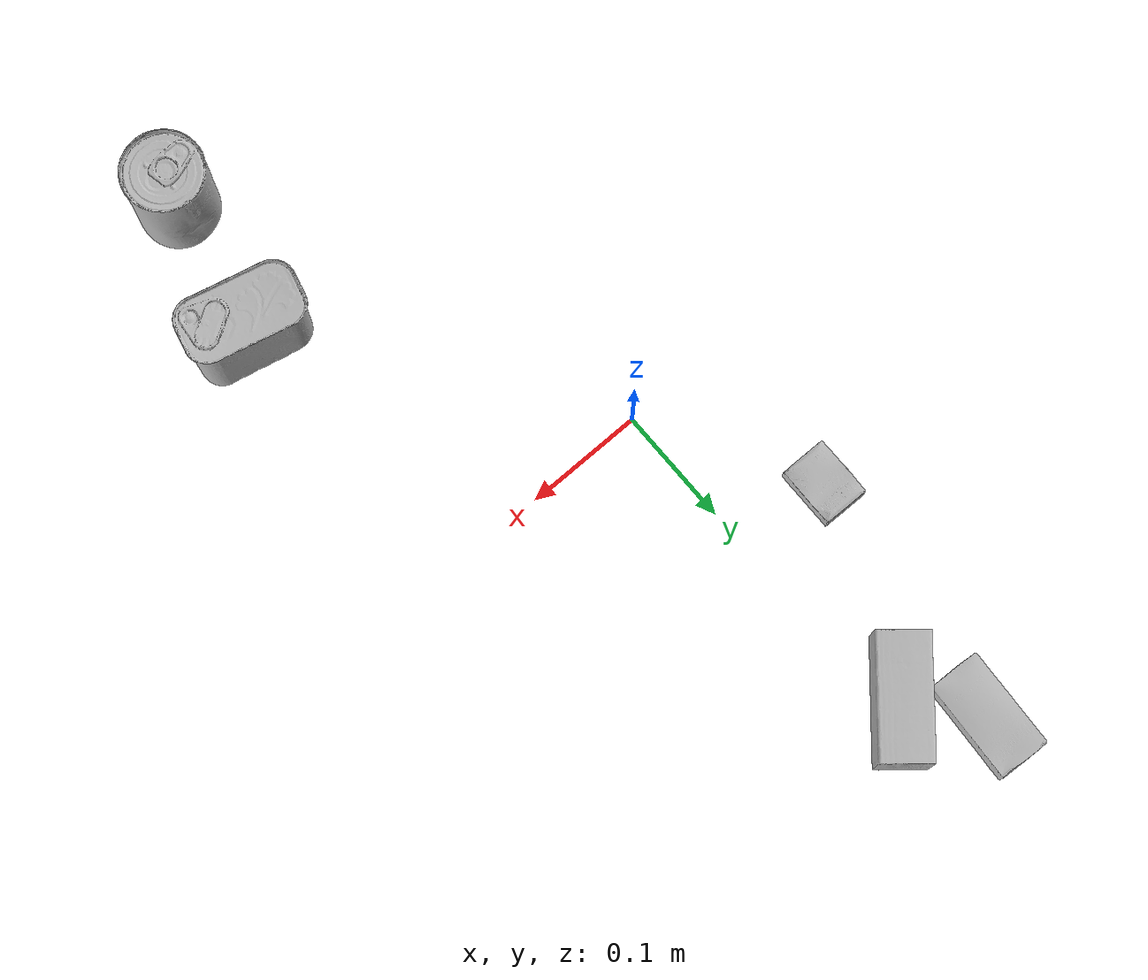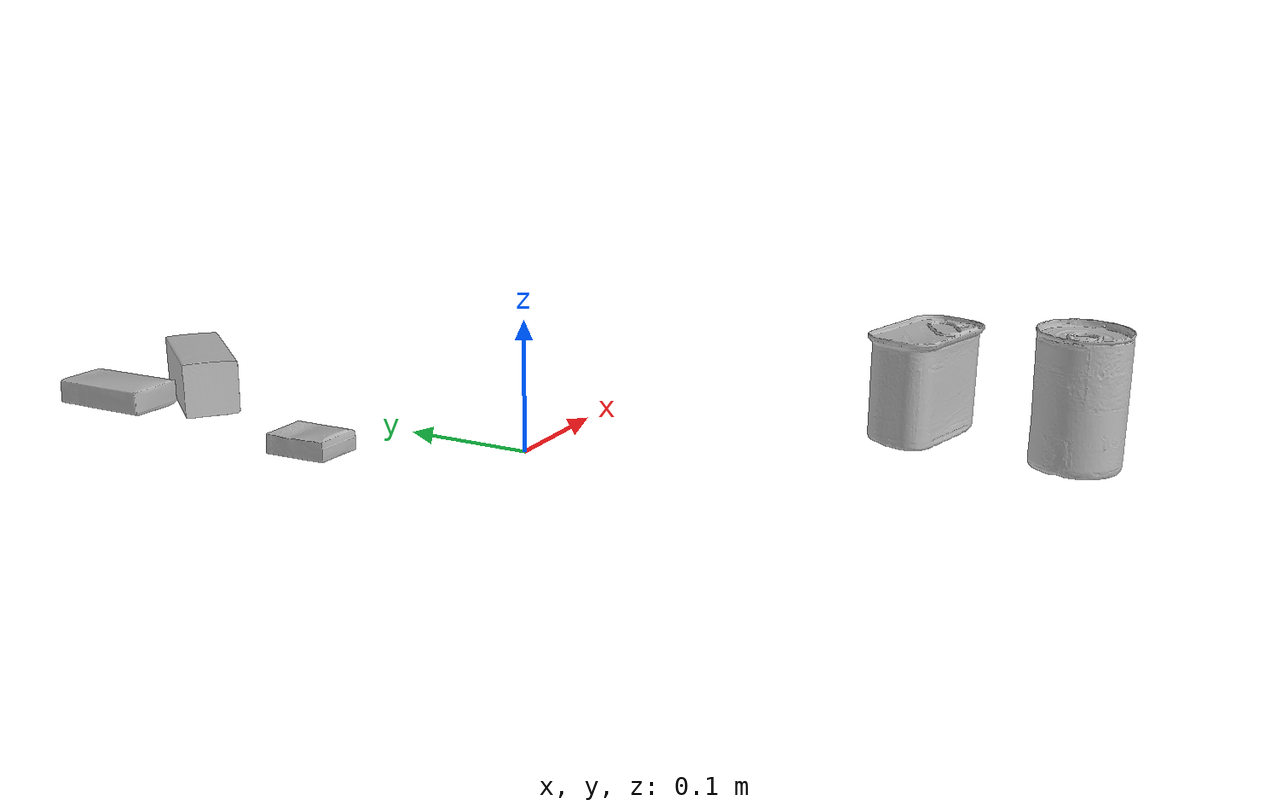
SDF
<sdf version="1.4">
  <world name="default">
    <light name="light1" type="point">
      <pose>0 0 1 0 0 0</pose>
      <diffuse>3 3 3 1</diffuse>
      <specular>3 3 3 1</specular>
    </light>
    <light name="light2" type="point">
      <pose>0 0.5 2 0 0 0</pose>
      <diffuse>1 1 1 1</diffuse>
      <specular>1 1 1 1</specular>
    </light>
    <light name="light3" type="point">
      <pose>0 0.5 2 0 0 0</pose>
      <diffuse>3 3 3 1</diffuse>
      <specular>3 3 3 1</specular>
    </light>
    <scene>
      <ambient>0.7 0.7 0.7</ambient>
    </scene>
    <model name="box1">
      <link name="link_box1">
        <collision name="default">
          <geometry>
            <mesh>
              <uri>model://sugar_box/collision_meshes/collision.obj</uri>
              <scale>0.5 0.5 0.5</scale>
            </mesh>
          </geometry>
          <surface>
            <friction>
              <ode>
                <mu>0.5</mu>
                <mu2>0.5</mu2>
              </ode>
            </friction>
          <contact>
        <ode>
            <max_vel>0</max_vel>
            <min_depth>0.0001</min_depth>
            <kp>1e8</kp>
        </ode>
    </contact></surface>
        </collision>
        <visual name="default">
          <geometry>
            <mesh>
              <uri>model://sugar_box/visual_meshes/visual.dae</uri>
              <scale>0.5 0.5 0.5</scale>
            </mesh>
          </geometry>
        </visual>
        <inertial>
          <mass>0.048160675913095474</mass>
          <pose>0.0005171863595023751 1.924554817378521e-05 -0.00018182402709499002 -0.0004046258638373534 0.0010506635215919557 0.0026153787891515894</pose>
          <inertia>
            <ixx>1.0031835e-05</ixx>
            <iyy>3.2424945e-05</iyy>
            <izz>3.8816543e-05</izz>
            <ixy>0</ixy>
            <ixz>0</ixz>
            <iyz>0</iyz>
          </inertia>
        </inertial>
      </link>
      <pose>-0.05315272510051727 0.35547566413879395 0.011399304494261742 0.000774711124991967 -0.02343311655323694 -1.6252341492941964</pose>
    </model>
    <model name="box2">
      <link name="link_box2">
        <collision name="default">
          <geometry>
            <mesh>
              <uri>model://cracker_box/collision_meshes/collision.obj</uri>
              <scale>0.25 0.25 0.25</scale>
            </mesh>
          </geometry>
          <surface>
            <friction>
              <ode>
                <mu>0.5</mu>
                <mu2>0.5</mu2>
              </ode>
            </friction>
          <contact>
        <ode>
            <max_vel>0</max_vel>
            <min_depth>0.0001</min_depth>
            <kp>1e8</kp>
        </ode>
    </contact></surface>
        </collision>
        <visual name="default">
          <geometry>
            <mesh>
              <uri>model://cracker_box/visual_meshes/visual.dae</uri>
              <scale>0.25 0.25 0.25</scale>
            </mesh>
          </geometry>
        </visual>
        <inertial>
          <mass>0.047952666878700256</mass>
          <pose>0.00023660370789002627 6.358561950037256e-05 -0.0004257383698131889 -0.0003162075404896153 -0.011106488669099107 0.002546795234185617</pose>
          <inertia>
            <ixx>7.623136e-06</ixx>
            <iyy>1.2587296e-05</iyy>
            <izz>1.7963224e-05</izz>
            <ixy>0</ixy>
            <ixz>0</ixz>
            <iyz>0</iyz>
          </inertia>
        </inertial>
      </link>
      <pose>-0.07928051054477692 0.13741034269332886 0.009096024557948112 -0.014050496777707751 -0.005016562626294458 -1.5807982758603287</pose>
    </model>
    <model name="box3">
      <link name="link_box3">
        <collision name="default">
          <geometry>
            <mesh>
              <uri>model://wood_block/collision_meshes/collision.obj</uri>
              <scale>0.5 0.5 0.5</scale>
            </mesh>
          </geometry>
          <surface>
            <friction>
              <ode>
                <mu>0.5</mu>
                <mu2>0.5</mu2>
              </ode>
            </friction>
          <contact>
        <ode>
            <max_vel>0</max_vel>
            <min_depth>0.0001</min_depth>
            <kp>1e8</kp>
        </ode>
    </contact></surface>
        </collision>
        <visual name="default">
          <geometry>
            <mesh>
              <uri>model://wood_block/visual_meshes/visual.dae</uri>
              <scale>0.5 0.5 0.5</scale>
            </mesh>
          </geometry>
        </visual>
        <inertial>
          <mass>0.27162742614746094</mass>
          <pose>-2.9066577553749084e-06 -0.000285404734313488 0.00013204291462898254 -0.05220780121661256 -0.005192696561201931 -0.006861379819720353</pose>
          <inertia>
            <ixx>9.086965e-05</ixx>
            <iyy>0.00028705722</iyy>
            <izz>0.0002859835</izz>
            <ixy>0</ixy>
            <ixz>0</ixz>
            <iyz>0</iyz>
          </inertia>
        </inertial>
      </link>
      <pose>-0.009753658436238766 0.3035565912723541 0.022629259154200554 -0.00520846310149172 0.005718713154177207 0.8706141217258777</pose>
    </model>
    <model name="can1">
      <link name="link_can1">
        <collision name="default">
          <geometry>
            <mesh>
              <uri>model://tomato_soup_can/collision_meshes/collision.obj</uri>
              <scale>1.0 1.0 1.0</scale>
            </mesh>
          </geometry>
          <surface>
            <friction>
              <ode>
                <mu>0.5</mu>
                <mu2>0.5</mu2>
              </ode>
            </friction>
          <contact>
        <ode>
            <max_vel>0</max_vel>
            <min_depth>0.0001</min_depth>
            <kp>1e8</kp>
        </ode>
    </contact></surface>
        </collision>
        <visual name="default">
          <geometry>
            <mesh>
              <uri>model://tomato_soup_can/visual_meshes/visual.dae</uri>
              <scale>1.0 1.0 1.0</scale>
            </mesh>
          </geometry>
        </visual>
        <inertial>
          <mass>0.33680883049964905</mass>
          <pose>0.0001265227037947625 0.0001080552683561109 -0.0017973986687138677 0.007020065933643549 0.0004229964102555597 -0.009903579397299064</pose>
          <inertia>
            <ixx>0.00036928226</ixx>
            <iyy>0.0003671481</iyy>
            <izz>0.00019139561</izz>
            <ixy>0</ixy>
            <ixz>0</ixz>
            <iyz>0</iyz>
          </inertia>
        </inertial>
      </link>
      <pose>0.16237318515777588 -0.3654966950416565 0.05127400904893875 -3.760795986392472e-07 -5.37489808893571e-07 -1.661460061429116</pose>
    </model>
    <model name="can2">
      <link name="link_can2">
        <collision name="default">
          <geometry>
            <mesh>
              <uri>model://potted_meat_can/collision_meshes/collision.obj</uri>
              <scale>1.0 1.0 1.0</scale>
            </mesh>
          </geometry>
          <surface>
            <friction>
              <ode>
                <mu>0.5</mu>
                <mu2>0.5</mu2>
              </ode>
            </friction>
          <contact>
        <ode>
            <max_vel>0</max_vel>
            <min_depth>0.0001</min_depth>
            <kp>1e8</kp>
        </ode>
    </contact></surface>
        </collision>
        <visual name="default">
          <geometry>
            <mesh>
              <uri>model://potted_meat_can/visual_meshes/visual.dae</uri>
              <scale>1.0 1.0 1.0</scale>
            </mesh>
          </geometry>
        </visual>
        <inertial>
          <mass>0.5009446144104004</mass>
          <pose>0.00022888141393195838 -5.9891164710279554e-05 -0.0006367440801113844 -0.028093347044227477 -0.007232596108467961 0.015406262357490775</pose>
          <inertia>
            <ixx>0.0006444129</ixx>
            <iyy>0.0003915297</iyy>
            <izz>0.00046868768</izz>
            <ixy>0</ixy>
            <ixz>0</ixz>
            <iyz>0</iyz>
          </inertia>
        </inertial>
      </link>
      <pose>0.18599452078342438 -0.2454402893781662 0.042128004133701324 -3.843670234402939e-08 -4.3285830584575156e-07 1.3232658542934987</pose>
    </model>
  <physics type="ode">
      <max_contacts>50</max_contacts>
      <ode>
        <solver>
          <type>quick</type>
          <iters>75</iters>
        </solver>
        <constraints>
          <contact_max_correcting_vel>0</contact_max_correcting_vel>
          <contact_surface_layer>0</contact_surface_layer>
        </constraints>
      </ode>
    </physics></world>
</sdf>
